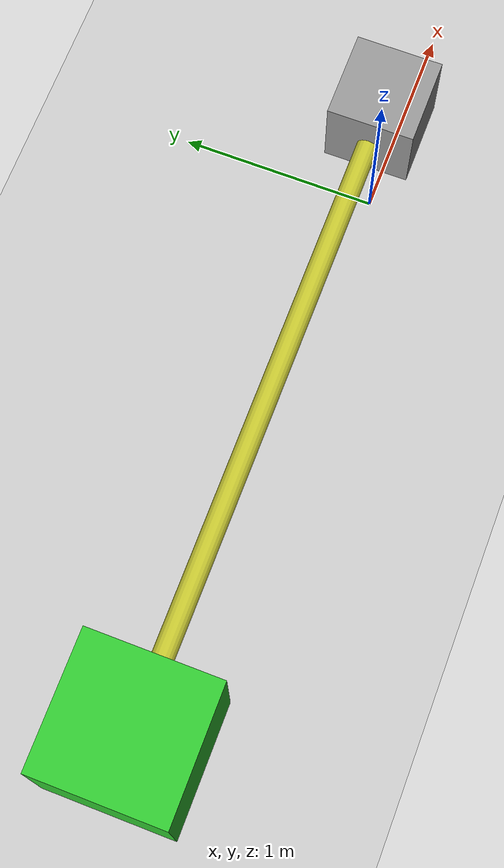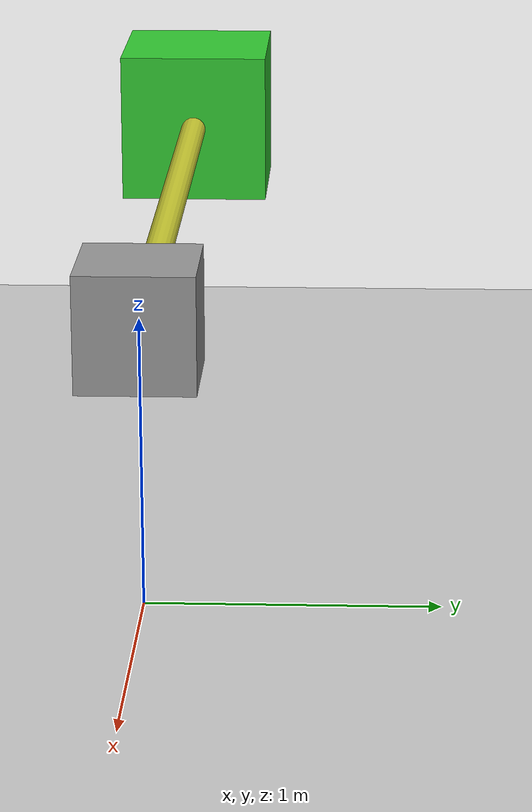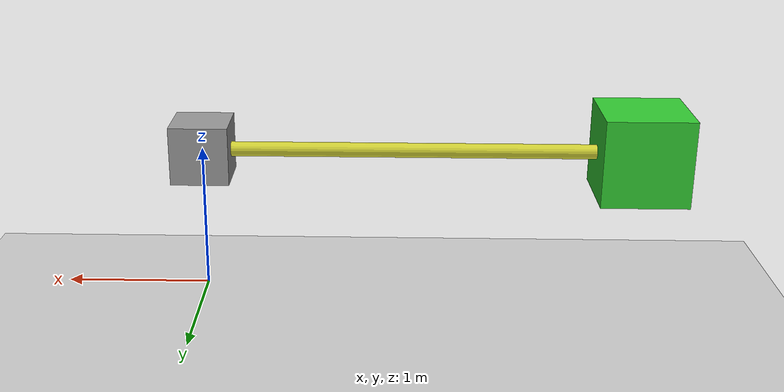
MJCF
<mujoco>
  <option gravity="0 0 -9.81"/>
  <worldbody>
    <!-- Support (fixed wall for spring attachment) -->
    <body name="object_3" pos="0 0 1">
      <geom type="box" size="0.2 0.2 0.2" rgba="0.6 0.6 0.6 1"/>
      <site name="support_site" pos="-0.2 0 0" size="0.01"/>
    </body>
    <!-- Ground Surface -->
    <body name="object_4" pos="-10 0 -0.1">
      <geom type="plane" size="25 25 0.1" rgba="0.8 0.8 0.8 1" friction="0.1 0.1 0.1"/>
    </body>
    <!-- Mass (Green Box, 1 kg) -->
    <body name="object_1" pos="-3 0 1">
      <geom type="box" size="0.3 0.3 0.3" mass="1" rgba="0.2 0.8 0.2 1"/>
      <joint name="object_1_joint" type="free"/>
      <site name="mass_site" pos="0.3 0 0" size="0.01"/>
    </body>
    <!-- Spring (visual capsule) -->
    <body name="object_2" pos="0 0 1">
      <geom type="capsule" fromto="0 0 0 -3 0 0" size="0.05" rgba="0.8 0.8 0.2 1"/>
    </body>
  </worldbody>

  <!-- Spring tendon connecting mass to support -->
  <tendon>
    <spatial limited="true" range="0 5" stiffness="50" width="0.02">
      <site site="mass_site"/>
      <site site="support_site"/>
    </spatial>
  </tendon>
</mujoco>
